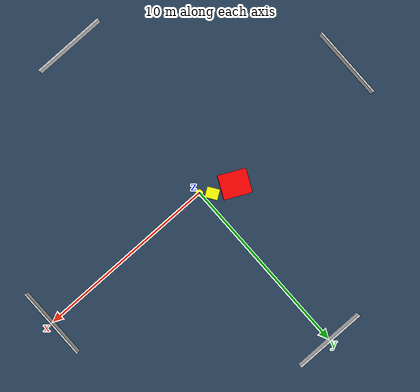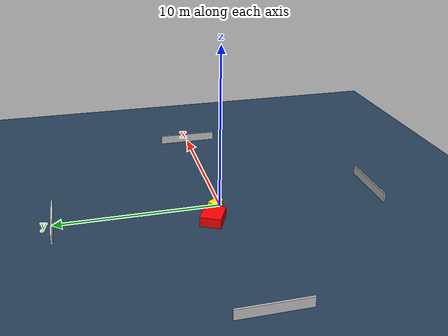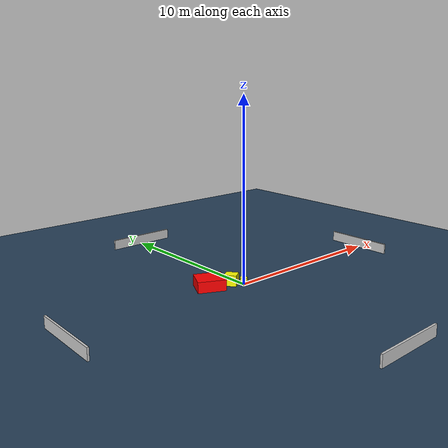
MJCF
<?xml version="1.0" ?>
<mujoco model="generated_environment">
  <option timestep="0.01" integrator="RK4" cone="elliptic"/>
  <default>
    <geom density="1"/>
  </default>
  <asset>
    <texture builtin="gradient" height="3072" name="skybox" rgb1="0.3 0.5 0.7" rgb2="0 0 0" type="skybox" width="512"/>
    <texture builtin="checker" height="300" name="groundplane" rgb1="0.2 0.3 0.4" rgb2="0.1 0.2 0.3" type="2d" width="300"/>
    <material name="groundplane" reflectance="0.2" texrepeat="5 5" texture="groundplane"/>
  </asset>
  <worldbody>
    <light dir="0 0 -1" directional="true" pos="0 0 1.5"/>
    <geom condim="3" friction="0.5 0.005 0.001" material="groundplane" name="floor" pos="0 0 0" size="0 0 0.05" type="plane"/>
    <body name="walls">
      <geom name="wall_1" condim="4" pos="-10.0 0.0 0.3" rgba="0.800000011920929 0.800000011920929 0.800000011920929 1.0" size="0.05 2.0 0.3" type="box"/>
      <geom name="wall_2" condim="4" pos="10.0 0.0 0.3" rgba="0.800000011920929 0.800000011920929 0.800000011920929 1.0" size="0.05 2.0 0.3" type="box"/>
      <geom name="wall_3" condim="4" pos="0.0 -10.0 0.3" rgba="0.800000011920929 0.800000011920929 0.800000011920929 1.0" size="2.0 0.05 0.3" type="box"/>
      <geom name="wall_4" condim="4" pos="0.0 10.0 0.3" rgba="0.800000011920929 0.800000011920929 0.800000011920929 1.0" size="2.0 0.05 0.3" type="box"/>
    </body>
    <body name="robot">
      <joint name="joint_x" type="slide" pos="0 0 0" axis="1 0 0"/>
      <joint name="joint_y" type="slide" pos="0 0 0" axis="0 1 0"/>
      <geom name="robot" type="cylinder" pos="0.0 0.0 0.2" size="0.2 0.2 0.0" mass="5.0" friction="1.0 0.005 0.0001" condim="4" rgba="1.0 1.0 0.0 1.0"/>
    </body>
    <body name="obstacle_1_movable">
      <geom name="obstacle_1_movable" condim="4" pos="-0.48142640866582564 0.4420362471327651 0.3" euler="0 0 123.88477418723208" friction="0.0 0.005 0.001" rgba="1.0 1.0 0.0 1.0" size="0.33641420493413043 0.28554041278037373 0.3" type="box" mass="0.1"/>
      <joint type="free"/>
    </body>
    <body name="obstacle_2_static">
      <geom name="obstacle_2_static" condim="4" pos="-1.64909681304958 0.8442211093173945 0.3" euler="0 0 244.03370608899374" friction="0.0 0.005 0.001" rgba="1.0 0.0 0.0 1.0" size="0.6406392235070418 0.750053124028198 0.3" type="box"/>
    </body>
  </worldbody>
  <actuator>
    <motor name="actuator_x" joint="joint_x" gear="1" ctrlrange="-1 1"/>
    <motor name="actuator_y" joint="joint_y" gear="1" ctrlrange="-1 1"/>
  </actuator>
</mujoco>
